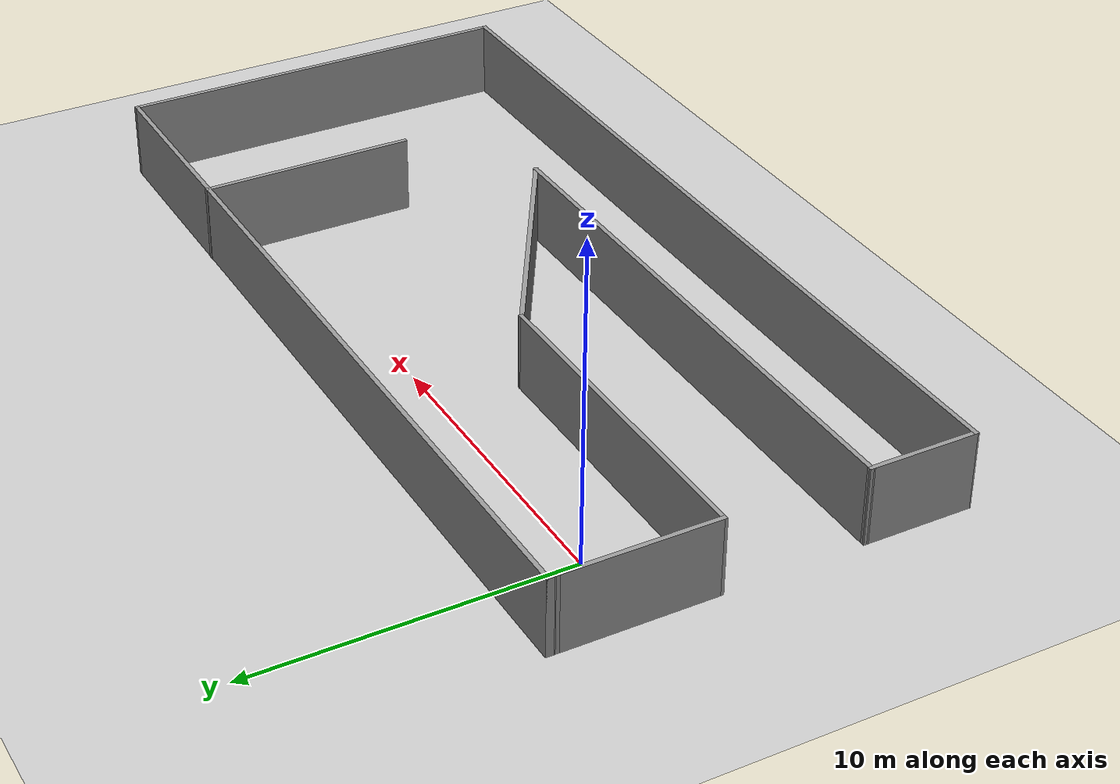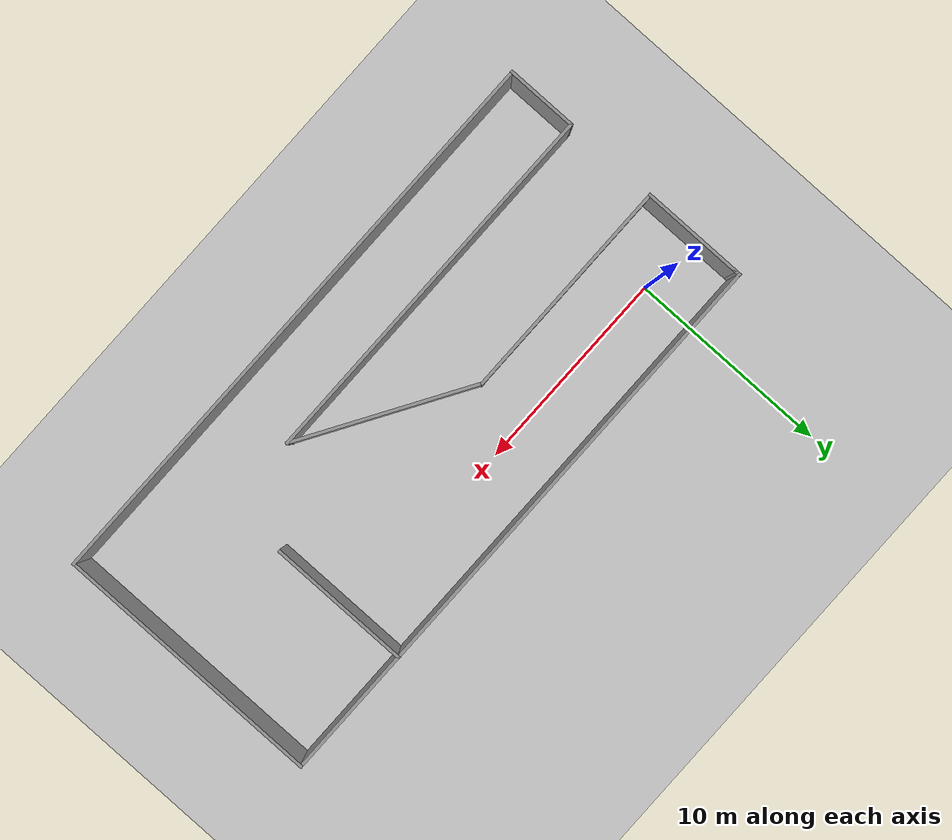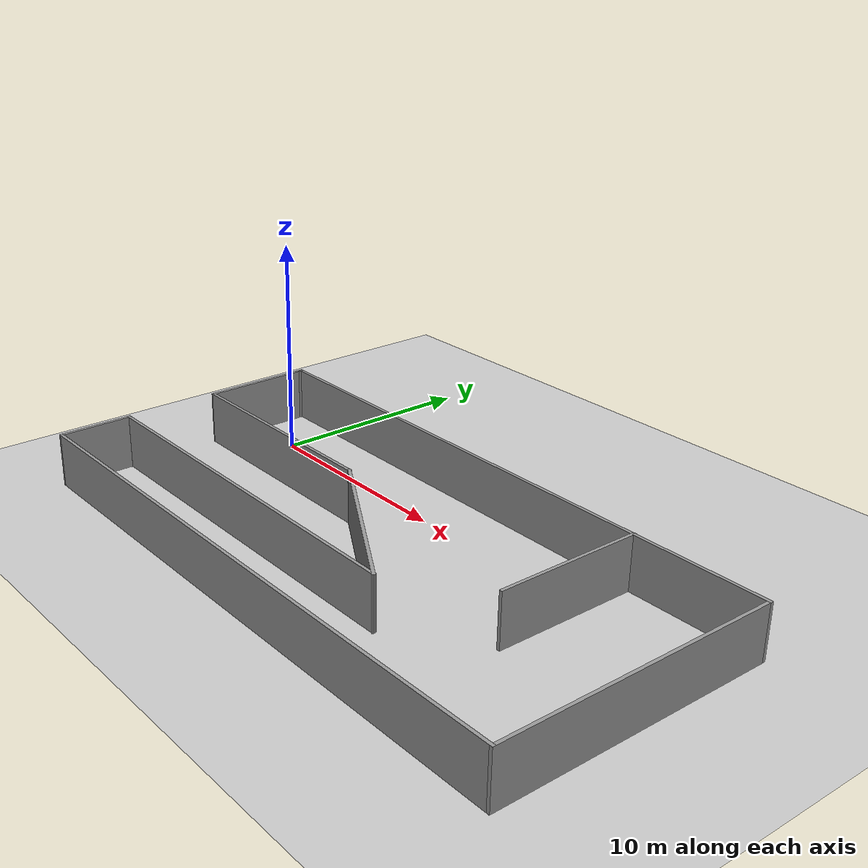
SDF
<sdf version="1.7">
 <world name="default">
  <light name="sun" type="directional">
   <pose>0 0 10 0 -0 0</pose>
   <diffuse>0.8 0.8 0.8 1</diffuse>
   <specular>0.2 0.2 0.2 1</specular>
   <attenuation>
    <range>1000</range>
    <constant>0.9</constant>
    <linear>0.01</linear>
    <quadratic>0.001</quadratic>
   </attenuation>
   <direction>-0.5 0.1 -0.9</direction>
   <spot><inner_angle>0</inner_angle><outer_angle>0</outer_angle><falloff>0</falloff></spot>
  </light>
  <model name="ground_plane">
   <static>1</static>
   <link name="link">
    <collision name="collision">
     <geometry><plane><normal>0 0 1</normal><size>100 100</size></plane></geometry>
     <surface>
      <contact><collide_bitmask>65535</collide_bitmask></contact>
      <friction><ode><mu>100</mu><mu2>50</mu2></ode></friction>
     </surface>
    </collision>
    <visual name="visual">
     <cast_shadows>0</cast_shadows>
     <geometry><plane><normal>0 0 1</normal><size>100 100</size></plane></geometry>
     <material>
      <script><uri>file://media/materials/scripts/gazebo.material</uri><name>Gazebo/Grey</name></script>
     </material>
    </visual>
   </link>
  </model>
  <gravity>0 0 -9.8</gravity>
  <magnetic_field>6e-06 2.3e-05 -4.2e-05</magnetic_field>
  <atmosphere type="adiabatic"/>
  <physics type="ode">
   <max_step_size>0.001</max_step_size>
   <real_time_factor>1</real_time_factor>
   <real_time_update_rate>1000</real_time_update_rate>
  </physics>
  <scene><ambient>0.4 0.4 0.4 1</ambient><background>0.7 0.7 0.7 1</background><shadows>1</shadows></scene>
  <spherical_coordinates>
   <surface_model>EARTH_WGS84</surface_model>
   <latitude_deg>0</latitude_deg>
   <longitude_deg>0</longitude_deg>
   <elevation>0</elevation>
   <heading_deg>0</heading_deg>
  </spherical_coordinates>
  <model name="room2">
   <pose>11.3954 -3.96491 0 0 -0 0</pose>
   <link name="Wall_11">
    <collision name="Wall_11_Collision">
     <geometry><box><size>7 0.15 2.5</size></box></geometry>
     <pose>0 0 1.25 0 -0 0</pose>
    </collision>
    <visual name="Wall_11_Visual">
     <pose>0 0 1.25 0 -0 0</pose>
     <geometry><box><size>7 0.15 2.5</size></box></geometry>
     <material>
      <script><uri>file://media/materials/scripts/gazebo.material</uri><name>Gazebo/Grey</name></script>
      <ambient>1 1 1 1</ambient>
     </material>
     <meta><layer>0</layer></meta>
    </visual>
    <pose>7.88327 3.13306 0 0 -0 -1.5708</pose>
   </link>
   <link name="Wall_13">
    <collision name="Wall_13_Collision">
     <geometry><box><size>11 0.15 2.5</size></box></geometry>
     <pose>0 0 1.25 0 -0 0</pose>
    </collision>
    <visual name="Wall_13_Visual">
     <pose>0 0 1.25 0 -0 0</pose>
     <geometry><box><size>11 0.15 2.5</size></box></geometry>
     <material>
      <script><uri>file://media/materials/scripts/gazebo.material</uri><name>Gazebo/Grey</name></script>
      <ambient>1 1 1 1</ambient>
     </material>
     <meta><layer>0</layer></meta>
    </visual>
    <pose>-8.74407 1.3939 0 0 -0 0</pose>
   </link>
   <link name="Wall_14">
    <collision name="Wall_14_Collision">
     <geometry><box><size>8.92142 0.15 2.5</size></box></geometry>
     <pose>0 0 1.25 0 -0 0</pose>
    </collision>
    <visual name="Wall_14_Visual">
     <pose>0 0 1.25 0 -0 0</pose>
     <geometry><box><size>8.92142 0.15 2.5</size></box></geometry>
     <material>
      <script><uri>file://media/materials/scripts/gazebo.material</uri><name>Gazebo/Grey</name></script>
      <ambient>1 1 1 1</ambient>
     </material>
     <meta><layer>0</layer></meta>
    </visual>
    <pose>0.427678 -0.885647 0 0 -0 -0.546579</pose>
   </link>
   <link name="Wall_16">
    <collision name="Wall_16_Collision">
     <geometry><box><size>5.04806 0.15 2.5</size></box></geometry>
     <pose>0 0 1.25 0 -0 0</pose>
    </collision>
    <visual name="Wall_16_Visual">
     <pose>0 0 1.25 0 -0 0</pose>
     <geometry><box><size>5.04806 0.15 2.5</size></box></geometry>
     <material>
      <script><uri>file://media/materials/scripts/gazebo.material</uri><name>Gazebo/Grey</name></script>
      <ambient>1 1 1 1</ambient>
     </material>
     <meta><layer>0</layer></meta>
    </visual>
    <pose>-14.1717 3.84294 0 0 -0 1.57188</pose>
   </link>
   <link name="Wall_18">
    <collision name="Wall_18_Collision">
     <geometry><box><size>3.54284 0.15 2.5</size></box></geometry>
     <pose>0 0 1.25 0 -0 0</pose>
    </collision>
    <visual name="Wall_18_Visual">
     <pose>0 0 1.25 0 -0 0</pose>
     <geometry><box><size>3.54284 0.15 2.5</size></box></geometry>
     <material>
      <script><uri>file://media/materials/scripts/gazebo.material</uri><name>Gazebo/Grey</name></script>
      <ambient>1 1 1 1</ambient>
     </material>
     <meta><layer>0</layer></meta>
    </visual>
    <pose>-14.175 -4.86162 0 0 -0 -1.57045</pose>
   </link>
   <link name="Wall_4">
    <collision name="Wall_4_Collision">
     <geometry><box><size>28.5 0.15 2.5</size></box></geometry>
     <pose>0 0 1.25 0 -0 0</pose>
    </collision>
    <visual name="Wall_4_Visual">
     <pose>0 0 1.25 0 -0 0</pose>
     <geometry><box><size>28.5 0.15 2.5</size></box></geometry>
     <material>
      <script><uri>file://media/materials/scripts/gazebo.material</uri><name>Gazebo/Grey</name></script>
      <ambient>1 1 1 1</ambient>
     </material>
     <meta><layer>0</layer></meta>
    </visual>
    <pose>0.000602 -6.55803 0 0 -0 0</pose>
   </link>
   <link name="Wall_5">
    <collision name="Wall_5_Collision">
     <geometry><box><size>13.25 0.15 2.5</size></box></geometry>
     <pose>0 0 1.25 0 -0 0</pose>
    </collision>
    <visual name="Wall_5_Visual">
     <pose>0 0 1.25 0 -0 0</pose>
     <geometry><box><size>13.25 0.15 2.5</size></box></geometry>
     <material>
      <script><uri>file://media/materials/scripts/gazebo.material</uri><name>Gazebo/Grey</name></script>
      <ambient>1 1 1 1</ambient>
     </material>
     <meta><layer>0</layer></meta>
    </visual>
    <pose>14.1756 -0.008034 0 0 -0 1.5708</pose>
   </link>
   <link name="Wall_6">
    <collision name="Wall_6_Collision">
     <geometry><box><size>28.5 0.15 2.5</size></box></geometry>
     <pose>0 0 1.25 0 -0 0</pose>
    </collision>
    <visual name="Wall_6_Visual">
     <pose>0 0 1.25 0 -0 0</pose>
     <geometry><box><size>28.5 0.15 2.5</size></box></geometry>
     <material>
      <script><uri>file://media/materials/scripts/gazebo.material</uri><name>Gazebo/Grey</name></script>
      <ambient>1 1 1 1</ambient>
     </material>
     <meta><layer>0</layer></meta>
    </visual>
    <pose>0.000602 6.54197 0 0 -0 3.14159</pose>
   </link>
   <link name="Wall_7">
    <collision name="Wall_7_Collision">
     <geometry><box><size>0.4 0.15 2.5</size></box></geometry>
     <pose>0 0 1.25 0 -0 0</pose>
    </collision>
    <visual name="Wall_7_Visual">
     <pose>0 0 1.25 0 -0 0</pose>
     <geometry><box><size>0.4 0.15 2.5</size></box></geometry>
     <material>
      <script><uri>file://media/materials/scripts/gazebo.material</uri><name>Gazebo/Grey</name></script>
      <ambient>1 1 1 1</ambient>
     </material>
     <meta><layer>0</layer></meta>
    </visual>
    <pose>-14.1744 6.41697 0 0 -0 -1.5708</pose>
   </link>
   <link name="Wall_9">
    <collision name="Wall_9_Collision">
     <geometry><box><size>18.5 0.15 2.5</size></box></geometry>
     <pose>0 0 1.25 0 -0 0</pose>
    </collision>
    <visual name="Wall_9_Visual">
     <pose>0 0 1.25 0 -0 0</pose>
     <geometry><box><size>18.5 0.15 2.5</size></box></geometry>
     <material>
      <script><uri>file://media/materials/scripts/gazebo.material</uri><name>Gazebo/Grey</name></script>
      <ambient>1 1 1 1</ambient>
     </material>
     <meta><layer>0</layer></meta>
    </visual>
    <pose>-5.00058 -3.1652 0 0 -0 0</pose>
   </link>
   <static>1</static>
  </model>
 </world>
</sdf>
